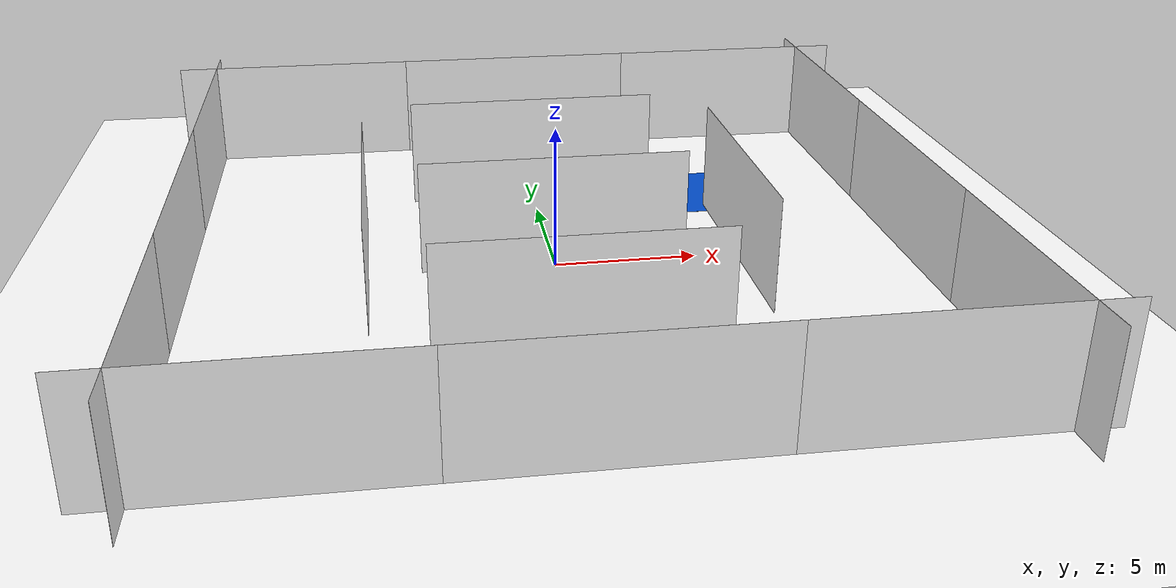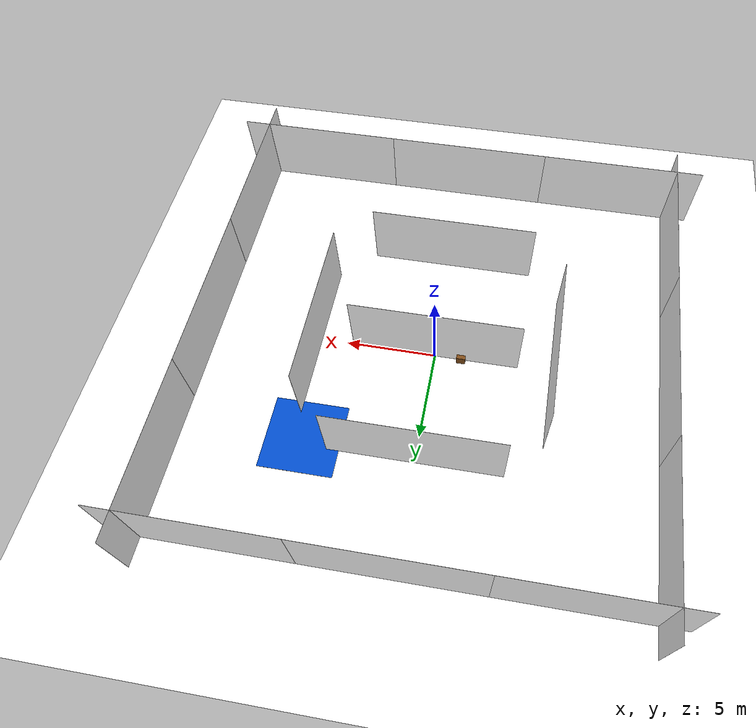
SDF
<sdf version="1.8">
 <world name="forest_arena">
  <plugin name="ignition::gazebo::systems::Physics" filename="ignition-gazebo-physics-system"/>
  <plugin name="ignition::gazebo::systems::UserCommands" filename="ignition-gazebo-user-commands-system"/>
  <plugin name="ignition::gazebo::systems::SceneBroadcaster" filename="ignition-gazebo-scene-broadcaster-system"/>
  <plugin name="ignition::gazebo::systems::Contact" filename="ignition-gazebo-contact-system"/>
  <light name="sun" type="directional">
   <cast_shadows>0</cast_shadows>
   <pose>0 0 100 0 0 0</pose>
   <diffuse>0.8 0.8 0.8 1</diffuse>
   <specular>0.8 0.8 0.8 1</specular>
   <direction>-0.5 0.1 -0.9</direction>
   <intensity>5</intensity>
  </light>
  <gravity>0 0 -9.81</gravity>
  <magnetic_field>6e-06 2.3e-05 -4.2e-05</magnetic_field>
  <atmosphere type="adiabatic"/>
  <physics name="default_physics" type="ignored">
   <max_step_size>0.01</max_step_size>
   <real_time_factor>1</real_time_factor>
   <real_time_update_rate>100</real_time_update_rate>
  </physics>
  <scene>
   <ambient>0.95 0.98 1.0 1</ambient>
   <background>0.55 0.75 1.0 1</background>
   <shadows>0</shadows>
   <grid>0</grid>
  </scene>
  <spherical_coordinates>
   <latitude_deg>0.0</latitude_deg>
   <longitude_deg>0.0</longitude_deg>
   <elevation>10.0</elevation>
   <heading_deg>0</heading_deg>
   <surface_model>EARTH_WGS84</surface_model>
  </spherical_coordinates>
  <include><uri>model://forest_plane</uri><name>forest_plane</name></include>
  <include>
   <uri>model://forest_wall</uri>
   <name>forest_wall1</name>
   <pose>12.5 0 2 1.570796 0 -1.570796</pose>
  </include>
  <include>
   <uri>model://forest_wall</uri>
   <name>forest_wall2</name>
   <pose>12.5 -9.32 2 1.570796 0 -1.570796</pose>
  </include>
  <include>
   <uri>model://forest_wall</uri>
   <name>forest_wall3</name>
   <pose>12.5 +9.32 2 1.570796 0 -1.570796</pose>
  </include>
  <include>
   <uri>model://forest_wall</uri>
   <name>forest_wall4</name>
   <pose>-12.5 0 2 1.570796 0 1.570796</pose>
  </include>
  <include>
   <uri>model://forest_wall</uri>
   <name>forest_wall5</name>
   <pose>-12.5 -9.32 2 1.570796 0 1.570796</pose>
  </include>
  <include>
   <uri>model://forest_wall</uri>
   <name>forest_wall6</name>
   <pose>-12.5 +9.32 2 1.570796 0 1.570796</pose>
  </include>
  <include><uri>model://forest_wall</uri><name>forest_wall7</name><pose>0 -12.5 2 1.570796 0 0</pose></include>
  <include>
   <uri>model://forest_wall</uri>
   <name>forest_wall8</name>
   <pose>-9.32 -12.5 2 1.570796 0 0</pose>
  </include>
  <include>
   <uri>model://forest_wall</uri>
   <name>forest_wall9</name>
   <pose>+9.32 -12.5 2 1.570796 0 0</pose>
  </include>
  <include><uri>model://forest_wall</uri><name>forest_wall10</name><pose>0 12.5 2 1.570796 0 0</pose></include>
  <include>
   <uri>model://forest_wall</uri>
   <name>forest_wall11</name>
   <pose>-9.32 12.5 2 1.570796 0 0</pose>
  </include>
  <include>
   <uri>model://forest_wall</uri>
   <name>forest_wall12</name>
   <pose>+9.32 12.5 2 1.570796 0 0</pose>
  </include>
  <include><uri>model://forest_wall</uri><name>forest_wall13</name><pose>0 0 2 1.570796 0 0</pose></include>
  <include><uri>model://forest_wall</uri><name>forest_wall14</name><pose>0 6.5 2 1.570796 0 0</pose></include>
  <include><uri>model://forest_wall</uri><name>forest_wall15</name><pose>0 -6.5 2 1.570796 0 0</pose></include>
  <include>
   <uri>model://forest_wall</uri>
   <name>forest_wall16</name>
   <pose>6.5 0 2 1.570796 0 -1.570796</pose>
  </include>
  <include>
   <uri>model://forest_wall</uri>
   <name>forest_wall17</name>
   <pose>-6.5 0 2 1.570796 0 -1.570796</pose>
  </include>
  <model name="pond1" static="true">
   <pose>6 6 -0.01 0 0 0</pose>
   <link name="link">
    <collision name="collision">
     <geometry><plane><normal>0 0 1</normal><size>4 4</size></plane></geometry>
    </collision>
    <visual name="visual">
     <geometry><plane><normal>0 0 1</normal><size>4 4</size></plane></geometry>
     <material><ambient>0.0 0.3 0.8 0.9</ambient><diffuse>0.0 0.3 0.8 0.9</diffuse></material>
    </visual>
   </link>
  </model>
  <model name="crate1" static="true">
   <pose>-1.5 0 0.25 0 0 0</pose>
   <link name="link">
    <collision name="collision"><geometry><box><size>0.5 0.5 0.5</size></box></geometry></collision>
    <visual name="visual">
     <geometry><box><size>0.5 0.5 0.5</size></box></geometry>
     <material><ambient>0.5 0.3 0.1 1</ambient><diffuse>0.5 0.3 0.1 1</diffuse></material>
    </visual>
   </link>
  </model>
  <model name="crate2" static="true">
   <pose>1.0 -1.0 0.25 0 0 0</pose>
   <link name="link">
    <collision name="collision"><geometry><box><size>0.5 0.5 0.5</size></box></geometry></collision>
    <visual name="visual">
     <geometry><box><size>0.5 0.5 0.5</size></box></geometry>
     <material><ambient>0.5 0.3 0.1 1</ambient><diffuse>0.5 0.3 0.1 1</diffuse></material>
    </visual>
   </link>
  </model>
 </world>
</sdf>

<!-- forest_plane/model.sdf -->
<sdf version="1.7">
<model name="grass_plane">
    <static>true</static>
    <link name="link">
        <collision name="collision">
            <geometry>
            <box>
                <normal>0 0 1</normal>
                <size>50 50 0.01</size>
            </box>
            </geometry>
        </collision>
        <visual name="visual">
            <cast_shadows>false</cast_shadows>
            <geometry>
            <plane>
                <normal>0 0 1</normal>
                <size>50 50</size>
            </plane>
            </geometry>
            <material>
                <ambient>1.0 1.0 1.0 1</ambient>
                <diffuse>1.0 1.0 1.0 1</diffuse>
                <pbr>
                    <metal>
                    <albedo_map>
                        model://forest_plane/materials/textures/forest_overhead.png
                    </albedo_map>
                    </metal>
                </pbr>
            </material>
        <plugin filename="ignition-gazebo-thermal-system"
                name="ignition::gazebo::systems::Thermal">
          <temperature>300.15</temperature>
          <emissivity>0.95</emissivity>
        </plugin>
        </visual>
    </link>
</model>
</sdf>

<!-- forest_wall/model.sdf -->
<sdf version="1.7">
<model name="forest_wall">
    <static>true</static>
    <link name="link">
        <thermal>
            <temperature>300.15</temperature>
        </thermal>
        <collision name="collision">
            <geometry>
            <box>
                <normal>0 0 1</normal>
                <size>9.32 4 0.01</size>
            </box>
            </geometry>
        </collision>
        <visual name="visual">
            <cast_shadows>false</cast_shadows>
            <geometry>
            <plane>
                <normal>0 0 1</normal>
                <size>9.32 4</size>
            </plane>
            </geometry>
            <material>
                <diffuse>1.0 1.0 1.0 1</diffuse>
                <pbr>
                    <metal>
                    <albedo_map>
                        model://forest_wall/materials/textures/forest_wall_transparent.png
                    </albedo_map>
                    </metal>
                </pbr>
                <double_sided>true</double_sided>
            </material>
        </visual>
    </link>
</model>
</sdf>
